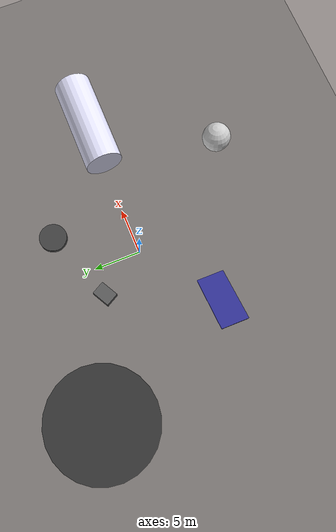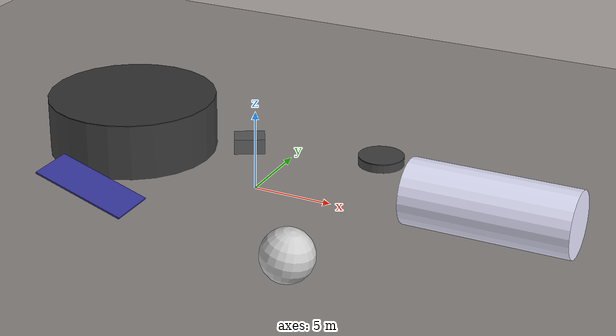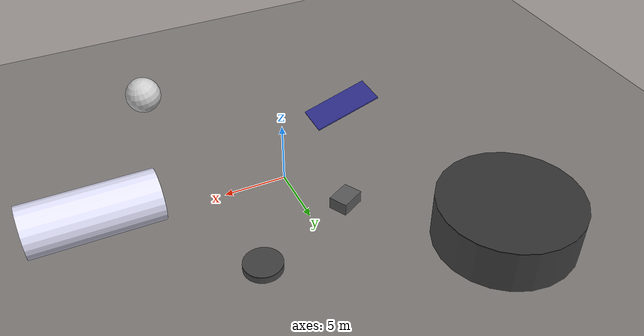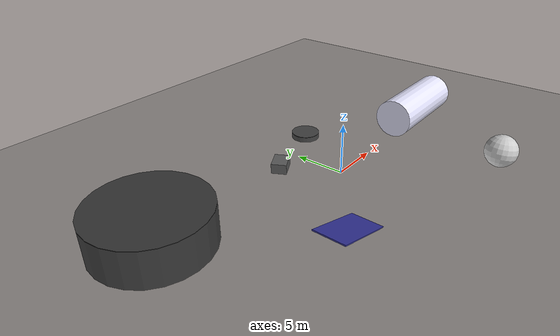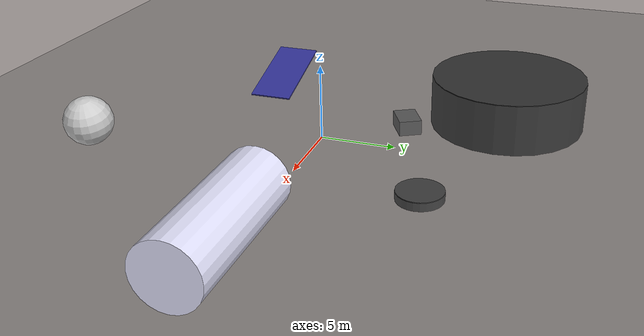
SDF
<?xml version="1.0" ?>
<sdf version="1.6">
  <world name="simple_lunar_habitat">

    <!-- Lunar Physics -->
    <physics name="default_physics" default="0" type="ode">
      <gravity>0 0 -1.62</gravity> <!-- Lunar gravity -->
      <ode>
        <solver>
          <type>quick</type>
          <iters>10</iters>
          <sor>1.3</sor>
        </solver>
        <constraints>
          <cfm>0</cfm>
          <erp>0.2</erp>
          <contact_max_correcting_vel>100</contact_max_correcting_vel>
          <contact_surface_layer>0.001</contact_surface_layer>
        </constraints>
      </ode>
      <real_time_update_rate>1000</real_time_update_rate>
      <max_step_size>0.001</max_step_size>
    </physics>

    <!-- Harsh lunar sunlight -->
    <light name="sun" type="directional">
      <cast_shadows>1</cast_shadows>
      <pose>-10 5 20 0 0 0</pose>
      <diffuse>0.9 0.9 0.8 1</diffuse>
      <specular>0.8 0.8 0.7 1</specular>
      <attenuation>
        <range>1000</range>
        <constant>0.9</constant>
        <linear>0.01</linear>
        <quadratic>0.001</quadratic>
      </attenuation>
      <direction>0.5 -0.2 -0.9</direction>
    </light>

    <!-- Lunar surface (dark gray) -->
    <model name="lunar_ground">
      <static>true</static>
      <link name="link">
        <collision name="collision">
          <geometry>
            <plane>
              <normal>0 0 1</normal>
              <size>200 200</size>
            </plane>
          </geometry>
          <surface>
            <contact>
              <collide_bitmask>65535</collide_bitmask>
            </contact>
            <friction>
              <ode>
                <mu>0.1</mu>  <!-- Low friction lunar dust -->
                <mu2>0.1</mu2>
              </ode>
            </friction>
          </surface>
        </collision>
        <visual name="visual">
          <cast_shadows>false</cast_shadows>
          <geometry>
            <plane>
              <normal>0 0 1</normal>
              <size>200 200</size>
            </plane>
          </geometry>
          <material>
            <ambient>0.2 0.2 0.2 1</ambient>  <!-- Dark lunar surface -->
            <diffuse>0.3 0.3 0.3 1</diffuse>
            <specular>0.1 0.1 0.1 1</specular>
          </material>
        </visual>
      </link>
    </model>

    <!-- Cylindrical Lunar Habitat -->
    <model name="lunar_habitat">
      <static>true</static>
      <pose>15 0 2 0 1.57 0</pose> <!-- Horizontal cylinder -->
      <link name="habitat_link">
        <visual name="visual">
          <geometry>
            <cylinder>
              <radius>2</radius>
              <length>10</length>
            </cylinder>
          </geometry>
          <material>
            <ambient>0.8 0.8 0.9 1</ambient>
            <diffuse>0.9 0.9 1.0 1</diffuse>
            <specular>0.4 0.4 0.4 1</specular>
          </material>
        </visual>
        <collision name="collision">
          <geometry>
            <cylinder>
              <radius>2</radius>
              <length>10</length>
            </cylinder>
          </geometry>
        </collision>
      </link>
    </model>

    <!-- Solar Panel Array -->
    <model name="solar_panels">
      <static>true</static>
      <pose>-8 -6 1 0 0.3 0</pose>
      <link name="panel_link">
        <visual name="visual">
          <geometry>
            <box>
              <size>6 3 0.1</size>
            </box>
          </geometry>
          <material>
            <ambient>0.1 0.1 0.4 1</ambient>
            <diffuse>0.2 0.2 0.6 1</diffuse>
            <specular>0.7 0.7 0.7 1</specular>
          </material>
        </visual>
        <collision name="collision">
          <geometry>
            <box>
              <size>6 3 0.1</size>
            </box>
          </geometry>
        </collision>
      </link>
    </model>

    <!-- Large Crater -->
    <model name="main_crater">
      <static>true</static>
      <pose>-15 10 -2 0 0 0</pose>
      <link name="crater_link">
        <visual name="visual">
          <geometry>
            <cylinder>
              <radius>6</radius>
              <length>4</length>
            </cylinder>
          </geometry>
          <material>
            <ambient>0.15 0.15 0.15 1</ambient>
            <diffuse>0.2 0.2 0.2 1</diffuse>
            <specular>0.05 0.05 0.05 1</specular>
          </material>
        </visual>
        <collision name="collision">
          <geometry>
            <cylinder>
              <radius>6</radius>
              <length>4</length>
            </cylinder>
          </geometry>
        </collision>
      </link>
    </model>

    <!-- Communication Dish -->
    <model name="comm_dish">
      <static>true</static>
      <pose>8 -12 3 0 0.2 0</pose>
      <link name="dish_link">
        <visual name="visual">
          <geometry>
            <sphere>
              <radius>1.5</radius>
            </sphere>
          </geometry>
          <material>
            <ambient>0.7 0.7 0.7 1</ambient>
            <diffuse>0.8 0.8 0.8 1</diffuse>
            <specular>0.9 0.9 0.9 1</specular>
          </material>
        </visual>
        <collision name="collision">
          <geometry>
            <sphere>
              <radius>1.5</radius>
            </sphere>
          </geometry>
        </collision>
      </link>
    </model>

    <!-- Small craters -->
    <model name="small_crater_1">
      <static>true</static>
      <pose>5 8 -0.3 0 0 0</pose>
      <link name="link">
        <visual name="visual">
          <geometry>
            <cylinder>
              <radius>1.5</radius>
              <length>0.6</length>
            </cylinder>
          </geometry>
          <material>
            <ambient>0.18 0.18 0.18 1</ambient>
            <diffuse>0.25 0.25 0.25 1</diffuse>
            <specular>0.1 0.1 0.1 1</specular>
          </material>
        </visual>
        <collision name="collision">
          <geometry>
            <cylinder>
              <radius>1.5</radius>
              <length>0.6</length>
            </cylinder>
          </geometry>
        </collision>
      </link>
    </model>

    <!-- Lunar rocks -->
    <model name="lunar_rocks">
      <static>true</static>
      <pose>-3 5 0.5 0 0 0.5</pose>
      <link name="rock_link">
        <visual name="visual">
          <geometry>
            <box>
              <size>2 1.5 1</size>
            </box>
          </geometry>
          <material>
            <ambient>0.25 0.25 0.25 1</ambient>
            <diffuse>0.35 0.35 0.35 1</diffuse>
            <specular>0.15 0.15 0.15 1</specular>
          </material>
        </visual>
        <collision name="collision">
          <geometry>
            <box>
              <size>2 1.5 1</size>
            </box>
          </geometry>
        </collision>
      </link>
    </model>

    <!-- ROS Plugins -->
    <plugin name="gazebo_ros_state" filename="libgazebo_ros_state.so">
      <ros>
        <namespace>/gazebo</namespace>
      </ros>
      <update_rate>1.0</update_rate>
    </plugin>

    <plugin name="gazebo_ros_factory" filename="libgazebo_ros_factory.so" />

  </world>
</sdf>
